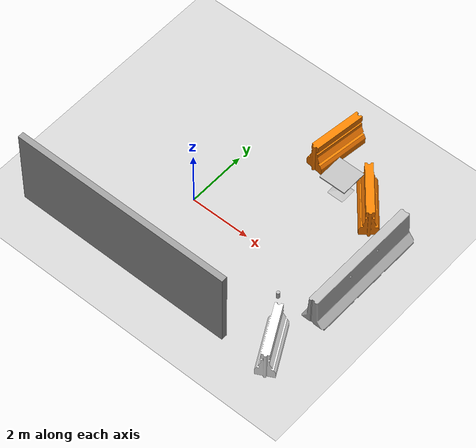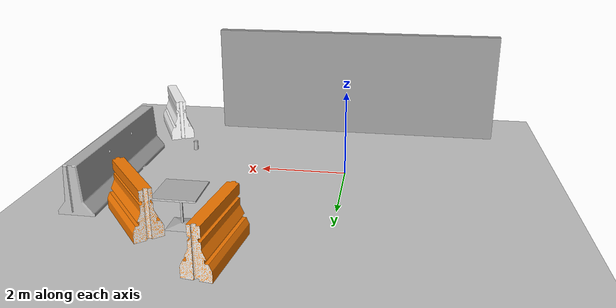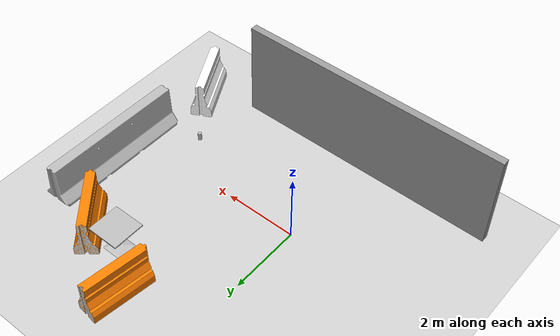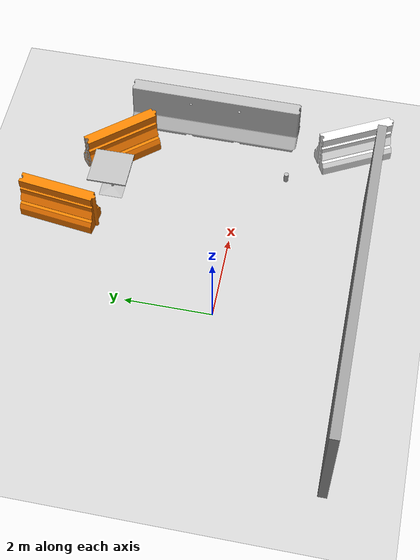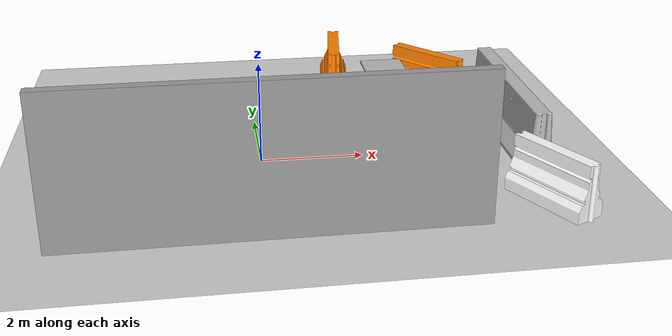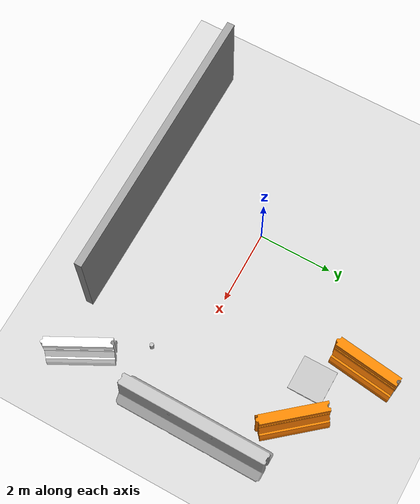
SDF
<sdf version="1.5">
 <world name="default">
  <light name="sun" type="directional">
   <pose>0 0 10 0 -0 0</pose>
   <diffuse>0.8 0.8 0.8 1</diffuse>
   <specular>0.2 0.2 0.2 1</specular>
   <attenuation>
    <range>1000</range>
    <constant>0.9</constant>
    <linear>0.01</linear>
    <quadratic>0.001</quadratic>
   </attenuation>
   <direction>-0.5 0.1 -0.9</direction>
  </light>
  <model name="ground_plane">
   <static>1</static>
   <link name="link">
    <collision name="collision">
     <geometry><plane><normal>0 0 1</normal><size>100 100</size></plane></geometry>
     <surface><friction><ode><mu>100</mu><mu2>50</mu2></ode></friction></surface>
    </collision>
    <visual name="visual">
     <cast_shadows>0</cast_shadows>
     <geometry><plane><normal>0 0 1</normal><size>100 100</size></plane></geometry>
     <material>
      <script><uri>file://media/materials/scripts/gazebo.material</uri><name>Gazebo/Grey</name></script>
     </material>
    </visual>
   </link>
  </model>
  <physics name="default_physics" default="0" type="ode">
   <max_step_size>0.001</max_step_size>
   <real_time_factor>1</real_time_factor>
   <real_time_update_rate>1000</real_time_update_rate>
   <gravity>0 0 -9.8</gravity>
   <magnetic_field>5.5645e-06 2.28758e-05 -4.23884e-05</magnetic_field>
  </physics>
  <scene><ambient>0.4 0.4 0.4 1</ambient><background>0.7 0.7 0.7 1</background><shadows>1</shadows></scene>
  <spherical_coordinates>
   <surface_model>EARTH_WGS84</surface_model>
   <latitude_deg>0</latitude_deg>
   <longitude_deg>0</longitude_deg>
   <elevation>0</elevation>
   <heading_deg>0</heading_deg>
  </spherical_coordinates>
  <model name="grey_wall">
   <static>1</static>
   <link name="link">
    <pose>0 0 1.4 0 -0 0</pose>
    <collision name="collision"><geometry><box><size>7.5 0.2 2.8</size></box></geometry></collision>
    <visual name="visual">
     <cast_shadows>0</cast_shadows>
     <geometry><box><size>7.5 0.2 2.8</size></box></geometry>
     <material>
      <script>
       <uri>model://grey_wall/materials/scripts</uri>
       <uri>model://grey_wall/materials/textures</uri>
       <name>vrc/grey_wall</name>
      </script>
     </material>
    </visual>
   </link>
   <pose>0 -3 0 0 -0 0</pose>
  </model>
  <model name="jersey_barrier">
   <static>1</static>
   <link name="link">
    <visual name="visual">
     <geometry><mesh><uri>model://jersey_barrier/meshes/jersey_barrier.dae</uri></mesh></geometry>
    </visual>
    <collision name="upright">
     <pose>0 0 0.5715 0 -0 0</pose>
     <geometry><box><size>4.06542 0.3063 1.143</size></box></geometry>
    </collision>
    <collision name="base">
     <pose>0 0 0.032258 0 -0 0</pose>
     <geometry><box><size>4.06542 0.8107 0.064516</size></box></geometry>
    </collision>
    <collision name="base2">
     <pose>0 0 0.1 0 -0 0</pose>
     <geometry><box><size>4.06542 0.65 0.1</size></box></geometry>
    </collision>
    <collision name="base3">
     <pose>0 0 0.2 0 -0 0</pose>
     <geometry><box><size>4.06542 0.5 0.1</size></box></geometry>
    </collision>
    <collision name="left-angle">
     <pose>0 -0.224 0.2401 0.9 -0 0</pose>
     <geometry><box><size>4.06542 0.5 0.064516</size></box></geometry>
    </collision>
    <collision name="right-angle">
     <pose>0 0.224 0.2401 -0.9 0 0</pose>
     <geometry><box><size>4.06542 0.5 0.064516</size></box></geometry>
    </collision>
   </link>
   <pose>5.29891 0.95194 -0.022379 0.000173 0.002252 -1.57817</pose>
  </model>
  <model name="beer">
   <link name="link">
    <pose>0 0 0.115 0 -0 0</pose>
    <inertial>
     <mass>0.39</mass>
     <inertia><ixx>0.00058</ixx><ixy>0</ixy><ixz>0</ixz><iyy>0.00058</iyy><iyz>0</iyz><izz>0.00019</izz></inertia>
    </inertial>
    <collision name="collision">
     <geometry><cylinder><radius>0.055</radius><length>0.23</length></cylinder></geometry>
    </collision>
    <visual name="visual">
     <geometry><cylinder><radius>0.055</radius><length>0.23</length></cylinder></geometry>
     <material>
      <script>
       <uri>model://beer/materials/scripts</uri>
       <uri>model://beer/materials/textures</uri>
       <name>Beer/Diffuse</name>
      </script>
     </material>
    </visual>
   </link>
   <pose>4 -1 -7e-06 -1e-06 -3.23117e-27 -1.7e-05</pose>
  </model>
  <model name="cafe_table">
   <static>1</static>
   <link name="link">
    <collision name="surface">
     <pose>0 0 0.755 0 -0 0</pose>
     <geometry><box><size>0.913 0.913 0.04</size></box></geometry>
    </collision>
    <collision name="column">
     <pose>0 0 0.37 0 -0 0</pose>
     <geometry><box><size>0.042 0.042 0.74</size></box></geometry>
    </collision>
    <collision name="base">
     <pose>0 0 0.02 0 -0 0</pose>
     <geometry><box><size>0.56 0.56 0.04</size></box></geometry>
    </collision>
    <visual name="visual">
     <geometry><mesh><uri>model://cafe_table/meshes/cafe_table.dae</uri></mesh></geometry>
    </visual>
   </link>
   <pose>3 3 0 0 -0 0</pose>
  </model>
  <model name="drc_practice_white_jersey_barrier">
   <static>1</static>
   <link name="link">
    <visual name="visual">
     <geometry>
      <mesh><uri>model://drc_practice_white_jersey_barrier/meshes/jersey_barrier.dae</uri></mesh>
     </geometry>
    </visual>
    <collision name="collision">
     <geometry>
      <mesh><uri>model://drc_practice_white_jersey_barrier/meshes/jersey_barrier.dae</uri></mesh>
     </geometry>
    </collision>
   </link>
   <pose>5 -2.45764 0 0 -0 0.488616</pose>
  </model>
  <model name="drc_practice_organge_jersey_barrier">
   <static>1</static>
   <link name="link">
    <visual name="visual">
     <geometry>
      <mesh><uri>model://drc_practice_orange_jersey_barrier/meshes/jersey_barrier.dae</uri></mesh>
     </geometry>
    </visual>
    <collision name="collision">
     <geometry>
      <mesh><uri>model://drc_practice_orange_jersey_barrier/meshes/jersey_barrier.dae</uri></mesh>
     </geometry>
    </collision>
   </link>
   <pose>2 4 0 0 0 -0.125034</pose>
  </model>
  <model name="drc_practice_organge_jersey_barrier_0">
   <static>1</static>
   <link name="link">
    <visual name="visual">
     <geometry>
      <mesh><uri>model://drc_practice_orange_jersey_barrier/meshes/jersey_barrier.dae</uri></mesh>
     </geometry>
    </visual>
    <collision name="collision">
     <geometry>
      <mesh><uri>model://drc_practice_orange_jersey_barrier/meshes/jersey_barrier.dae</uri></mesh>
     </geometry>
    </collision>
   </link>
   <pose>4 3 0 0 -0 0.70531</pose>
  </model>
 </world>
</sdf>
